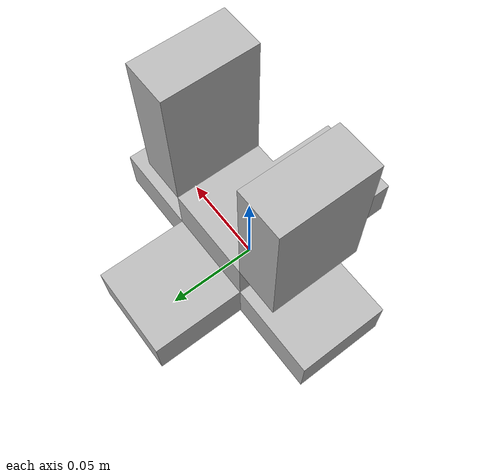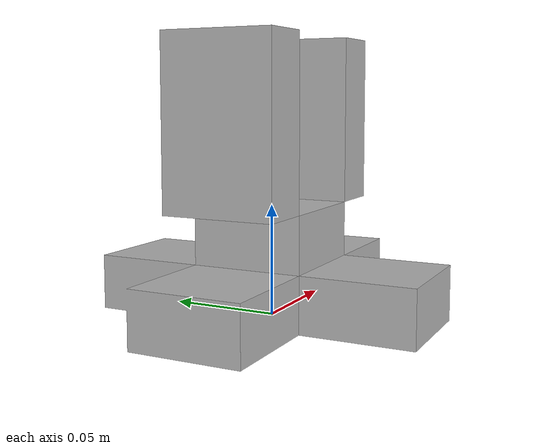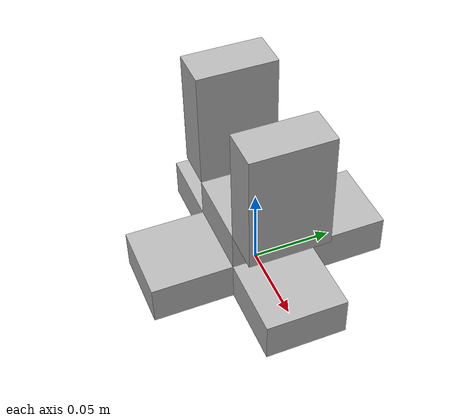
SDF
<?xml version="1.0" ?>
<sdf version="1.6">
	<model name="TestCube">
		<link name="rigidGroup_1">
			<pose frame="">0.0 0.0 0.016666666666666666 0.0 -0.0 0.0</pose>
			<inertial>
				<pose frame="">0.0 0.0 0 0 0 0</pose>
				<mass>2.9437499999999996</mass>
				<inertia>
					<ixx>0.004292968750000002</ixx>
					<ixy>0.0</ixy>
					<ixz>0.0</ixz>
					<iyy>0.004292968749999999</iyy>
					<iyz>0.0</iyz>
					<izz>0.0061328125</izz>
				</inertia>
			</inertial>
			<collision name="rigidGroup_1_collision">
				<geometry>
					<mesh>
						<uri>model://TestCube/meshes/CAD/rigidGroup_1.stl</uri>
						<scale>0.001 0.001 0.001</scale>
					</mesh>
				</geometry>
			</collision>
			<visual name="rigidGroup_1_visual">
				<geometry>
					<mesh>
						<uri>model://TestCube/meshes/CAD/rigidGroup_1.stl</uri>
						<scale>0.001 0.001 0.001</scale>
					</mesh>
				</geometry>
			</visual>
		</link>
		<link name="rigidGroup_2">
			<pose frame="">0.037500000000000006 0.0 0.06250000000000001 0.0 -0.0 0.0</pose>
			<inertial>
				<pose frame="">0 0 0 0 0 0</pose>
				<mass>0.7359374999999999</mass>
				<inertia>
					<ixx>0.006132812499999998</ixx>
					<ixy>-3.346656285430072e-20</ixy>
					<ixz>2.788880237858393e-19</ixz>
					<iyy>0.007052734374999998</iyy>
					<iyz>-0.0024147949218749996</iyz>
					<izz>0.0012265624999999998</izz>
				</inertia>
			</inertial>
			<collision name="rigidGroup_2_collision">
				<geometry>
					<mesh>
						<uri>model://TestCube/meshes/CAD/rigidGroup_2.stl</uri>
						<scale>0.001 0.001 0.001</scale>
					</mesh>
				</geometry>
			</collision>
			<visual name="rigidGroup_2_visual">
				<geometry>
					<mesh>
						<uri>model://TestCube/meshes/CAD/rigidGroup_2.stl</uri>
						<scale>0.001 0.001 0.001</scale>
					</mesh>
				</geometry>
			</visual>
		</link>
		<link name="rigidGroup_3">
			<pose frame="">-0.037500000000000006 0.0 0.08750000000000002 0.0 -0.0 0.0</pose>
			<inertial>
				<pose frame="">0 0 0 0 0 0</pose>
				<mass>0.7359374999999999</mass>
				<inertia>
					<ixx>0.0061328124999999985</ixx>
					<ixy>0.0</ixy>
					<ixz>0.0</ixz>
					<iyy>0.007052734374999999</iyy>
					<iyz>0.002414794921875</iyz>
					<izz>0.0012265624999999998</izz>
				</inertia>
			</inertial>
			<collision name="rigidGroup_3_collision">
				<geometry>
					<mesh>
						<uri>model://TestCube/meshes/CAD/rigidGroup_3.stl</uri>
						<scale>0.001 0.001 0.001</scale>
					</mesh>
				</geometry>
			</collision>
			<visual name="rigidGroup_3_visual">
				<geometry>
					<mesh>
						<uri>model://TestCube/meshes/CAD/rigidGroup_3.stl</uri>
						<scale>0.001 0.001 0.001</scale>
					</mesh>
				</geometry>
			</visual>
		</link>
		<joint name="joint_1" type="revolute">
			<parent>rigidGroup_1</parent>
			<child>rigidGroup_2</child>
			<pose frame="">-0.012500000000000004 0.0 -0.01250000000000001 0 0 0</pose>
			<axis>
				<xyz>0.0 1.0 0.0</xyz>
				<limit>
					<lower>-1.5707963267948966</lower>
					<upper>1.5707963267948966</upper>
				</limit>
				<use_parent_model_frame>0</use_parent_model_frame>
			</axis>
		</joint>
		<joint name="joint_2" type="revolute">
			<parent>rigidGroup_1</parent>
			<child>rigidGroup_3</child>
			<pose frame="">0.012500000000000004 0.0 -0.03750000000000002 0 0 0</pose>
			<axis>
				<xyz>0.0 -1.0 0.0</xyz>
				<limit>
					<lower>-1.5707963267948966</lower>
					<upper>1.5707963267948966</upper>
				</limit>
				<use_parent_model_frame>0</use_parent_model_frame>
			</axis>
		</joint>
		<plugin filename="libmyomuscle_plugin.so" name="myomuscle_plugin"/>
	</model>
</sdf>
